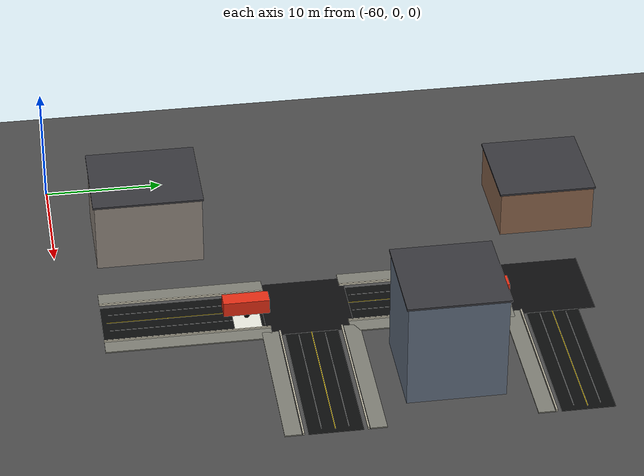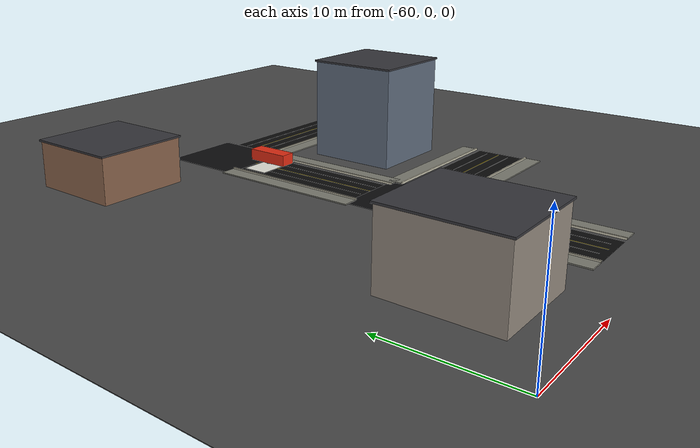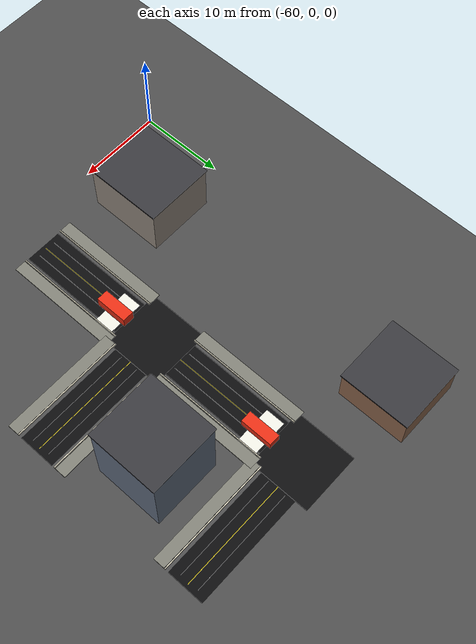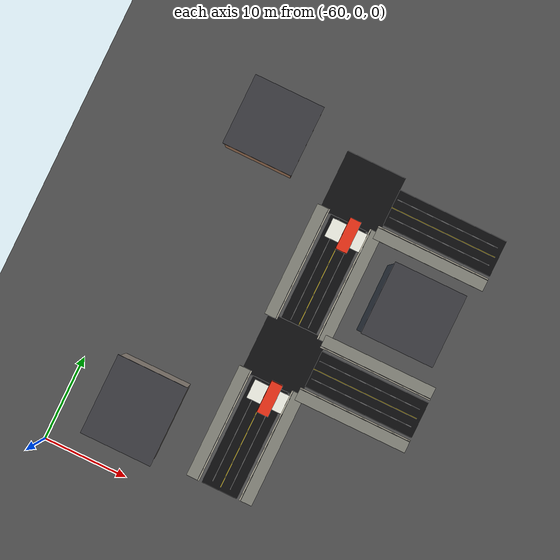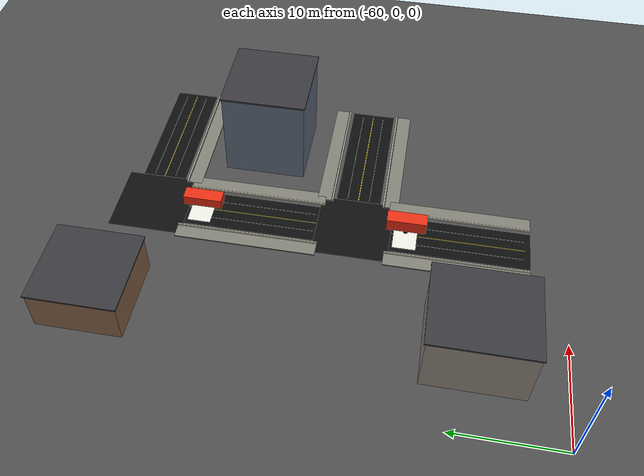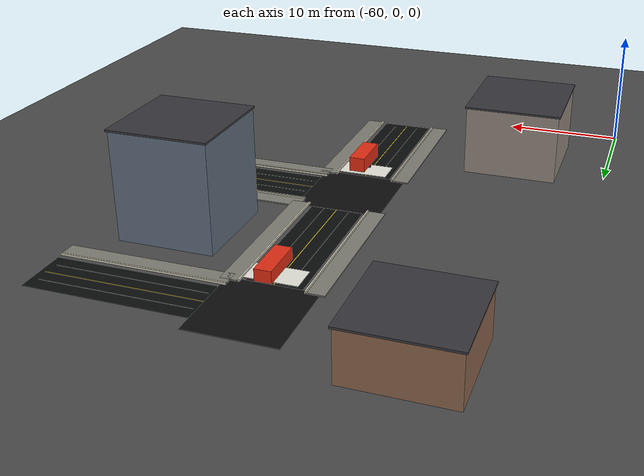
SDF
<sdf version="1.9">
 <world name="smart_city_world">
  <model name="ground">
   <static>true</static>
   <link name="link">
    <collision name="collision"><geometry><box><size>145 145 0.05</size></box></geometry></collision>
    <visual name="visual">
     <geometry><box><size>145 145 0.05</size></box></geometry>
     <material><ambient>0.30 0.30 0.30 1</ambient><diffuse>0.30 0.30 0.30 1</diffuse></material>
    </visual>
   </link>
  </model>
  <model name="road_e1">
   <static>true</static>
   <pose>-30.000 40.000 0.018 0 0 0.000000</pose>
   <link name="link">
    <collision name="collision"><geometry><box><size>13.600 4.350 0.030</size></box></geometry></collision>
    <visual name="visual">
     <geometry><box><size>13.600 4.350 0.030</size></box></geometry>
     <material><ambient>0.045 0.047 0.05 1</ambient><diffuse>0.045 0.047 0.05 1</diffuse></material>
    </visual>
   </link>
  </model>
  <model name="center_line_e1">
   <static>true</static>
   <pose>-30.000 40.000 0.052 0 0 0.000000</pose>
   <link name="link">
    <visual name="visual">
     <geometry><box><size>12.800 0.070 0.010</size></box></geometry>
     <material><ambient>1 0.86 0.05 1</ambient><diffuse>1 0.86 0.05 1</diffuse></material>
    </visual>
   </link>
  </model>
  <model name="edge_line_e1_L">
   <static>true</static>
   <pose>-30.000 41.080 0.054 0 0 0.000000</pose>
   <link name="link">
    <visual name="visual">
     <geometry><box><size>12.400 0.035 0.010</size></box></geometry>
     <material><ambient>0.85 0.85 0.85 1</ambient><diffuse>0.85 0.85 0.85 1</diffuse></material>
    </visual>
   </link>
  </model>
  <model name="sidewalk_e1_R">
   <static>true</static>
   <pose>-30.000 36.650 0.075 0 0 0.000000</pose>
   <link name="link">
    <visual name="visual">
     <geometry><box><size>13.600 1.350 0.100</size></box></geometry>
     <material><ambient>0.5 0.5 0.46 1</ambient><diffuse>0.5 0.5 0.46 1</diffuse></material>
    </visual>
   </link>
  </model>
  <model name="curb_e1_R">
   <static>true</static>
   <pose>-30.000 37.450 0.130 0 0 0.000000</pose>
   <link name="link">
    <visual name="visual">
     <geometry><box><size>13.600 0.120 0.180</size></box></geometry>
     <material><ambient>0.8 0.78 0.7 1</ambient><diffuse>0.8 0.78 0.7 1</diffuse></material>
    </visual>
   </link>
  </model>
  <model name="edge_line_e1_R">
   <static>true</static>
   <pose>-30.000 38.920 0.054 0 0 0.000000</pose>
   <link name="link">
    <visual name="visual">
     <geometry><box><size>12.400 0.035 0.010</size></box></geometry>
     <material><ambient>0.85 0.85 0.85 1</ambient><diffuse>0.85 0.85 0.85 1</diffuse></material>
    </visual>
   </link>
  </model>
  <model name="road_e5">
   <static>true</static>
   <pose>-30.000 20.000 0.018 0 0 0.000000</pose>
   <link name="link">
    <collision name="collision"><geometry><box><size>13.600 4.350 0.030</size></box></geometry></collision>
    <visual name="visual">
     <geometry><box><size>13.600 4.350 0.030</size></box></geometry>
     <material><ambient>0.045 0.047 0.05 1</ambient><diffuse>0.045 0.047 0.05 1</diffuse></material>
    </visual>
   </link>
  </model>
  <model name="center_line_e5">
   <static>true</static>
   <pose>-30.000 20.000 0.052 0 0 0.000000</pose>
   <link name="link">
    <visual name="visual">
     <geometry><box><size>12.800 0.070 0.010</size></box></geometry>
     <material><ambient>1 0.86 0.05 1</ambient><diffuse>1 0.86 0.05 1</diffuse></material>
    </visual>
   </link>
  </model>
  <model name="sidewalk_e5_L">
   <static>true</static>
   <pose>-30.000 23.350 0.075 0 0 0.000000</pose>
   <link name="link">
    <visual name="visual">
     <geometry><box><size>13.600 1.350 0.100</size></box></geometry>
     <material><ambient>0.5 0.5 0.46 1</ambient><diffuse>0.5 0.5 0.46 1</diffuse></material>
    </visual>
   </link>
  </model>
  <model name="curb_e5_L">
   <static>true</static>
   <pose>-30.000 22.550 0.130 0 0 0.000000</pose>
   <link name="link">
    <visual name="visual">
     <geometry><box><size>13.600 0.120 0.180</size></box></geometry>
     <material><ambient>0.8 0.78 0.7 1</ambient><diffuse>0.8 0.78 0.7 1</diffuse></material>
    </visual>
   </link>
  </model>
  <model name="edge_line_e5_L">
   <static>true</static>
   <pose>-30.000 21.080 0.054 0 0 0.000000</pose>
   <link name="link">
    <visual name="visual">
     <geometry><box><size>12.400 0.035 0.010</size></box></geometry>
     <material><ambient>0.85 0.85 0.85 1</ambient><diffuse>0.85 0.85 0.85 1</diffuse></material>
    </visual>
   </link>
  </model>
  <model name="sidewalk_e5_R">
   <static>true</static>
   <pose>-30.000 16.650 0.075 0 0 0.000000</pose>
   <link name="link">
    <visual name="visual">
     <geometry><box><size>13.600 1.350 0.100</size></box></geometry>
     <material><ambient>0.5 0.5 0.46 1</ambient><diffuse>0.5 0.5 0.46 1</diffuse></material>
    </visual>
   </link>
  </model>
  <model name="curb_e5_R">
   <static>true</static>
   <pose>-30.000 17.450 0.130 0 0 0.000000</pose>
   <link name="link">
    <visual name="visual">
     <geometry><box><size>13.600 0.120 0.180</size></box></geometry>
     <material><ambient>0.8 0.78 0.7 1</ambient><diffuse>0.8 0.78 0.7 1</diffuse></material>
    </visual>
   </link>
  </model>
  <model name="edge_line_e5_R">
   <static>true</static>
   <pose>-30.000 18.920 0.054 0 0 0.000000</pose>
   <link name="link">
    <visual name="visual">
     <geometry><box><size>12.400 0.035 0.010</size></box></geometry>
     <material><ambient>0.85 0.85 0.85 1</ambient><diffuse>0.85 0.85 0.85 1</diffuse></material>
    </visual>
   </link>
  </model>
  <model name="road_e21">
   <static>true</static>
   <pose>-40.000 30.000 0.018 0 0 -1.570796</pose>
   <link name="link">
    <collision name="collision"><geometry><box><size>13.600 4.350 0.030</size></box></geometry></collision>
    <visual name="visual">
     <geometry><box><size>13.600 4.350 0.030</size></box></geometry>
     <material><ambient>0.045 0.047 0.05 1</ambient><diffuse>0.045 0.047 0.05 1</diffuse></material>
    </visual>
   </link>
  </model>
  <model name="center_line_e21">
   <static>true</static>
   <pose>-40.000 30.000 0.052 0 0 -1.570796</pose>
   <link name="link">
    <visual name="visual">
     <geometry><box><size>12.800 0.070 0.010</size></box></geometry>
     <material><ambient>1 0.86 0.05 1</ambient><diffuse>1 0.86 0.05 1</diffuse></material>
    </visual>
   </link>
  </model>
  <model name="sidewalk_e21_L">
   <static>true</static>
   <pose>-36.650 30.000 0.075 0 0 -1.570796</pose>
   <link name="link">
    <visual name="visual">
     <geometry><box><size>13.600 1.350 0.100</size></box></geometry>
     <material><ambient>0.5 0.5 0.46 1</ambient><diffuse>0.5 0.5 0.46 1</diffuse></material>
    </visual>
   </link>
  </model>
  <model name="curb_e21_L">
   <static>true</static>
   <pose>-37.450 30.000 0.130 0 0 -1.570796</pose>
   <link name="link">
    <visual name="visual">
     <geometry><box><size>13.600 0.120 0.180</size></box></geometry>
     <material><ambient>0.8 0.78 0.7 1</ambient><diffuse>0.8 0.78 0.7 1</diffuse></material>
    </visual>
   </link>
  </model>
  <model name="edge_line_e21_L">
   <static>true</static>
   <pose>-38.920 30.000 0.054 0 0 -1.570796</pose>
   <link name="link">
    <visual name="visual">
     <geometry><box><size>12.400 0.035 0.010</size></box></geometry>
     <material><ambient>0.85 0.85 0.85 1</ambient><diffuse>0.85 0.85 0.85 1</diffuse></material>
    </visual>
   </link>
  </model>
  <model name="sidewalk_e21_R">
   <static>true</static>
   <pose>-43.350 30.000 0.075 0 0 -1.570796</pose>
   <link name="link">
    <visual name="visual">
     <geometry><box><size>13.600 1.350 0.100</size></box></geometry>
     <material><ambient>0.5 0.5 0.46 1</ambient><diffuse>0.5 0.5 0.46 1</diffuse></material>
    </visual>
   </link>
  </model>
  <model name="curb_e21_R">
   <static>true</static>
   <pose>-42.550 30.000 0.130 0 0 -1.570796</pose>
   <link name="link">
    <visual name="visual">
     <geometry><box><size>13.600 0.120 0.180</size></box></geometry>
     <material><ambient>0.8 0.78 0.7 1</ambient><diffuse>0.8 0.78 0.7 1</diffuse></material>
    </visual>
   </link>
  </model>
  <model name="edge_line_e21_R">
   <static>true</static>
   <pose>-41.080 30.000 0.054 0 0 -1.570796</pose>
   <link name="link">
    <visual name="visual">
     <geometry><box><size>12.400 0.035 0.010</size></box></geometry>
     <material><ambient>0.85 0.85 0.85 1</ambient><diffuse>0.85 0.85 0.85 1</diffuse></material>
    </visual>
   </link>
  </model>
  <model name="road_e22">
   <static>true</static>
   <pose>-40.000 10.000 0.018 0 0 -1.570796</pose>
   <link name="link">
    <collision name="collision"><geometry><box><size>13.600 4.350 0.030</size></box></geometry></collision>
    <visual name="visual">
     <geometry><box><size>13.600 4.350 0.030</size></box></geometry>
     <material><ambient>0.045 0.047 0.05 1</ambient><diffuse>0.045 0.047 0.05 1</diffuse></material>
    </visual>
   </link>
  </model>
  <model name="center_line_e22">
   <static>true</static>
   <pose>-40.000 10.000 0.052 0 0 -1.570796</pose>
   <link name="link">
    <visual name="visual">
     <geometry><box><size>12.800 0.070 0.010</size></box></geometry>
     <material><ambient>1 0.86 0.05 1</ambient><diffuse>1 0.86 0.05 1</diffuse></material>
    </visual>
   </link>
  </model>
  <model name="sidewalk_e22_L">
   <static>true</static>
   <pose>-36.650 10.000 0.075 0 0 -1.570796</pose>
   <link name="link">
    <visual name="visual">
     <geometry><box><size>13.600 1.350 0.100</size></box></geometry>
     <material><ambient>0.5 0.5 0.46 1</ambient><diffuse>0.5 0.5 0.46 1</diffuse></material>
    </visual>
   </link>
  </model>
  <model name="curb_e22_L">
   <static>true</static>
   <pose>-37.450 10.000 0.130 0 0 -1.570796</pose>
   <link name="link">
    <visual name="visual">
     <geometry><box><size>13.600 0.120 0.180</size></box></geometry>
     <material><ambient>0.8 0.78 0.7 1</ambient><diffuse>0.8 0.78 0.7 1</diffuse></material>
    </visual>
   </link>
  </model>
  <model name="edge_line_e22_L">
   <static>true</static>
   <pose>-38.920 10.000 0.054 0 0 -1.570796</pose>
   <link name="link">
    <visual name="visual">
     <geometry><box><size>12.400 0.035 0.010</size></box></geometry>
     <material><ambient>0.85 0.85 0.85 1</ambient><diffuse>0.85 0.85 0.85 1</diffuse></material>
    </visual>
   </link>
  </model>
  <model name="sidewalk_e22_R">
   <static>true</static>
   <pose>-43.350 10.000 0.075 0 0 -1.570796</pose>
   <link name="link">
    <visual name="visual">
     <geometry><box><size>13.600 1.350 0.100</size></box></geometry>
     <material><ambient>0.5 0.5 0.46 1</ambient><diffuse>0.5 0.5 0.46 1</diffuse></material>
    </visual>
   </link>
  </model>
  <model name="curb_e22_R">
   <static>true</static>
   <pose>-42.550 10.000 0.130 0 0 -1.570796</pose>
   <link name="link">
    <visual name="visual">
     <geometry><box><size>13.600 0.120 0.180</size></box></geometry>
     <material><ambient>0.8 0.78 0.7 1</ambient><diffuse>0.8 0.78 0.7 1</diffuse></material>
    </visual>
   </link>
  </model>
  <model name="edge_line_e22_R">
   <static>true</static>
   <pose>-41.080 10.000 0.054 0 0 -1.570796</pose>
   <link name="link">
    <visual name="visual">
     <geometry><box><size>12.400 0.035 0.010</size></box></geometry>
     <material><ambient>0.85 0.85 0.85 1</ambient><diffuse>0.85 0.85 0.85 1</diffuse></material>
    </visual>
   </link>
  </model>
  <model name="intersection_plate_n1">
   <static>true</static>
   <pose>-40.000 40.000 0.025 0 0 0.000000</pose>
   <link name="link">
    <collision name="collision"><geometry><box><size>7.200 7.200 0.035</size></box></geometry></collision>
    <visual name="visual">
     <geometry><box><size>7.200 7.200 0.035</size></box></geometry>
     <material><ambient>0.055 0.055 0.058 1</ambient><diffuse>0.055 0.055 0.058 1</diffuse></material>
    </visual>
   </link>
  </model>
  <model name="intersection_plate_n6">
   <static>true</static>
   <pose>-40.000 20.000 0.025 0 0 0.000000</pose>
   <link name="link">
    <collision name="collision"><geometry><box><size>7.200 7.200 0.035</size></box></geometry></collision>
    <visual name="visual">
     <geometry><box><size>7.200 7.200 0.035</size></box></geometry>
     <material><ambient>0.055 0.055 0.058 1</ambient><diffuse>0.055 0.055 0.058 1</diffuse></material>
    </visual>
   </link>
  </model>
  <model name="parking_bus_1">
   <static>true</static>
   <pose>-39.400 35.000 0.052 0 0 0.000000</pose>
   <link name="link">
    <collision name="collision"><geometry><box><size>4.700 2.250 0.050</size></box></geometry></collision>
    <visual name="visual">
     <geometry><box><size>4.700 2.250 0.050</size></box></geometry>
     <material><ambient>0.92 0.92 0.88 1</ambient><diffuse>0.92 0.92 0.88 1</diffuse></material>
    </visual>
   </link>
  </model>
  <model name="parking_bus_2">
   <static>true</static>
   <pose>-39.400 15.000 0.052 0 0 0.000000</pose>
   <link name="link">
    <collision name="collision"><geometry><box><size>4.700 2.250 0.050</size></box></geometry></collision>
    <visual name="visual">
     <geometry><box><size>4.700 2.250 0.050</size></box></geometry>
     <material><ambient>0.92 0.92 0.88 1</ambient><diffuse>0.92 0.92 0.88 1</diffuse></material>
    </visual>
   </link>
  </model>
  <model name="city_hall">
   <static>true</static>
   <pose>-52.000 8.000 3.000 0 0 0.000000</pose>
   <link name="link">
    <collision name="collision"><geometry><box><size>8.000 9.000 6.000</size></box></geometry></collision>
    <visual name="visual">
     <geometry><box><size>8.000 9.000 6.000</size></box></geometry>
     <material><ambient>0.58 0.54 0.5 1</ambient><diffuse>0.58 0.54 0.5 1</diffuse></material>
    </visual>
   </link>
  </model>
  <model name="city_hall_roof">
   <static>true</static>
   <pose>-52.000 8.000 6.080 0 0 0.000000</pose>
   <link name="link">
    <visual name="visual">
     <geometry><box><size>8.250 9.250 0.160</size></box></geometry>
     <material><ambient>0.22 0.22 0.24 1</ambient><diffuse>0.22 0.22 0.24 1</diffuse></material>
    </visual>
   </link>
  </model>
  <model name="office_a">
   <static>true</static>
   <pose>-30.000 30.000 4.500 0 0 0.000000</pose>
   <link name="link">
    <collision name="collision"><geometry><box><size>8.000 8.000 9.000</size></box></geometry></collision>
    <visual name="visual">
     <geometry><box><size>8.000 8.000 9.000</size></box></geometry>
     <material><ambient>0.38 0.43 0.5 1</ambient><diffuse>0.38 0.43 0.5 1</diffuse></material>
    </visual>
   </link>
  </model>
  <model name="office_a_roof">
   <static>true</static>
   <pose>-30.000 30.000 9.080 0 0 0.000000</pose>
   <link name="link">
    <visual name="visual">
     <geometry><box><size>8.250 8.250 0.160</size></box></geometry>
     <material><ambient>0.22 0.22 0.24 1</ambient><diffuse>0.22 0.22 0.24 1</diffuse></material>
    </visual>
   </link>
  </model>
  <model name="library">
   <static>true</static>
   <pose>-52.000 42.000 2.000 0 0 0.000000</pose>
   <link name="link">
    <collision name="collision"><geometry><box><size>8.000 8.000 4.000</size></box></geometry></collision>
    <visual name="visual">
     <geometry><box><size>8.000 8.000 4.000</size></box></geometry>
     <material><ambient>0.55 0.4 0.3 1</ambient><diffuse>0.55 0.4 0.3 1</diffuse></material>
    </visual>
   </link>
  </model>
  <model name="library_roof">
   <static>true</static>
   <pose>-52.000 42.000 4.080 0 0 0.000000</pose>
   <link name="link">
    <visual name="visual">
     <geometry><box><size>8.250 8.250 0.160</size></box></geometry>
     <material><ambient>0.22 0.22 0.24 1</ambient><diffuse>0.22 0.22 0.24 1</diffuse></material>
    </visual>
   </link>
  </model>
  <model name="bus_1">
   <pose>-39.400 35.000 0.28 0 0 -1.5700</pose>
   <link name="base_link">
    <inertial>
     <pose>0 0 0.22 0 0 0</pose>
     <mass>3500</mass>
     <inertia><ixx>825</ixx><iyy>4500</iyy><izz>4750</izz><ixy>0</ixy><ixz>0</ixz><iyz>0</iyz></inertia>
    </inertial>
    <collision name="body_collision">
     <pose>0 0 0.60 0 0 0</pose>
     <geometry><box><size>3.8 1.35 1.0</size></box></geometry>
     <surface>
      <friction><ode><mu>4.0</mu><mu2>4.0</mu2><slip1>0.0</slip1><slip2>0.0</slip2></ode></friction>
      <contact>
       <ode><kp>1500000</kp><kd>30000</kd><max_vel>0.05</max_vel><min_depth>0.001</min_depth></ode>
      </contact>
      <bounce><restitution_coefficient>0.0</restitution_coefficient><threshold>100000.0</threshold></bounce>
     </surface>
    </collision>
    <visual name="body_visual">
     <pose>0 0 0.60 0 0 0</pose>
     <geometry><box><size>3.8 1.35 1.0</size></box></geometry>
     <material><ambient>0.90 0.18 0.08 1</ambient><diffuse>0.90 0.18 0.08 1</diffuse></material>
    </visual>
    <sensor name="lidar" type="gpu_lidar">
     <pose>2.020 0 1.750 0 0 0</pose>
     <topic>/bus_1/scan</topic>
     <update_rate>10</update_rate>
     <lidar>
      <scan>
       <horizontal>
        <samples>360</samples>
        <resolution>1</resolution>
        <min_angle>-3.14159</min_angle>
        <max_angle>3.14159</max_angle>
       </horizontal>
      </scan>
      <range><min>0.12</min><max>18.0</max><resolution>0.03</resolution></range>
     </lidar>
     <always_on>1</always_on>
     <visualize>false</visualize>
    </sensor>
   </link>
   <link name="left_wheel">
    <pose>0 0.525 0.220 1.5708 0 0</pose>
    <collision name="collision">
     <geometry><cylinder><radius>0.22</radius><length>0.16</length></cylinder></geometry>
     <surface>
      <friction><ode><mu>4.0</mu><mu2>4.0</mu2><slip1>0.0</slip1><slip2>0.0</slip2></ode></friction>
      <contact>
       <ode><kp>1500000</kp><kd>30000</kd><max_vel>0.05</max_vel><min_depth>0.001</min_depth></ode>
      </contact>
      <bounce><restitution_coefficient>0.0</restitution_coefficient><threshold>100000.0</threshold></bounce>
     </surface>
    </collision>
    <visual name="visual">
     <geometry><cylinder><radius>0.22</radius><length>0.16</length></cylinder></geometry>
     <material><ambient>0.01 0.01 0.01 1</ambient><diffuse>0.01 0.01 0.01 1</diffuse></material>
    </visual>
   </link>
   <link name="right_wheel">
    <pose>0 -0.525 0.220 1.5708 0 0</pose>
    <collision name="collision">
     <geometry><cylinder><radius>0.22</radius><length>0.16</length></cylinder></geometry>
     <surface>
      <friction><ode><mu>4.0</mu><mu2>4.0</mu2><slip1>0.0</slip1><slip2>0.0</slip2></ode></friction>
      <contact>
       <ode><kp>1500000</kp><kd>30000</kd><max_vel>0.05</max_vel><min_depth>0.001</min_depth></ode>
      </contact>
      <bounce><restitution_coefficient>0.0</restitution_coefficient><threshold>100000.0</threshold></bounce>
     </surface>
    </collision>
    <visual name="visual">
     <geometry><cylinder><radius>0.22</radius><length>0.16</length></cylinder></geometry>
     <material><ambient>0.01 0.01 0.01 1</ambient><diffuse>0.01 0.01 0.01 1</diffuse></material>
    </visual>
   </link>
   <joint name="left_wheel_joint" type="revolute">
    <parent>base_link</parent>
    <child>left_wheel</child>
    <axis>
     <xyz>0 0 1</xyz>
     <limit><lower>-1e16</lower><upper>1e16</upper></limit>
     <dynamics><damping>3</damping><friction>1</friction></dynamics>
    </axis>
   </joint>
   <joint name="right_wheel_joint" type="revolute">
    <parent>base_link</parent>
    <child>right_wheel</child>
    <axis>
     <xyz>0 0 1</xyz>
     <limit><lower>-1e16</lower><upper>1e16</upper></limit>
     <dynamics><damping>3</damping><friction>1</friction></dynamics>
    </axis>
   </joint>
   <plugin filename="gz-sim-diff-drive-system" name="gz::sim::systems::DiffDrive">
    <left_joint>left_wheel_joint</left_joint>
    <right_joint>right_wheel_joint</right_joint>
    <wheel_separation>1.05</wheel_separation>
    <wheel_radius>0.22</wheel_radius>
    <topic>/bus_1/cmd_vel</topic>
    <odom_topic>/bus_1/odom</odom_topic>
    <frame_id>bus_1/odom</frame_id>
    <child_frame_id>bus_1/base_link</child_frame_id>
    <odom_publish_frequency>30</odom_publish_frequency>
   </plugin>
   <plugin filename="libmodel_world_pose_publisher.so" name="smart_city::ModelWorldPosePublisher"/>
  </model>
  <model name="bus_2">
   <pose>-39.400 15.000 0.28 0 0 -1.5700</pose>
   <link name="base_link">
    <inertial>
     <pose>0 0 0.22 0 0 0</pose>
     <mass>3500</mass>
     <inertia><ixx>825</ixx><iyy>4500</iyy><izz>4750</izz><ixy>0</ixy><ixz>0</ixz><iyz>0</iyz></inertia>
    </inertial>
    <collision name="body_collision">
     <pose>0 0 0.60 0 0 0</pose>
     <geometry><box><size>3.8 1.35 1.0</size></box></geometry>
     <surface>
      <friction><ode><mu>4.0</mu><mu2>4.0</mu2><slip1>0.0</slip1><slip2>0.0</slip2></ode></friction>
      <contact>
       <ode><kp>1500000</kp><kd>30000</kd><max_vel>0.05</max_vel><min_depth>0.001</min_depth></ode>
      </contact>
      <bounce><restitution_coefficient>0.0</restitution_coefficient><threshold>100000.0</threshold></bounce>
     </surface>
    </collision>
    <visual name="body_visual">
     <pose>0 0 0.975 0 0 0</pose>
     <geometry><box><size>3.8 1.35 1.25</size></box></geometry>
     <material><ambient>0.90 0.18 0.08 1</ambient><diffuse>0.90 0.18 0.08 1</diffuse></material>
    </visual>
    <sensor name="lidar" type="gpu_lidar">
     <pose>2.020 0 1.750 0 0 0</pose>
     <topic>/bus_2/scan</topic>
     <update_rate>10</update_rate>
     <lidar>
      <scan>
       <horizontal>
        <samples>360</samples>
        <resolution>1</resolution>
        <min_angle>-3.14159</min_angle>
        <max_angle>3.14159</max_angle>
       </horizontal>
      </scan>
      <range><min>0.12</min><max>18.0</max><resolution>0.03</resolution></range>
     </lidar>
     <always_on>1</always_on>
     <visualize>false</visualize>
    </sensor>
   </link>
   <link name="left_wheel">
    <pose>0 0.525 0.220 1.5708 0 0</pose>
    <collision name="collision">
     <geometry><cylinder><radius>0.22</radius><length>0.16</length></cylinder></geometry>
     <surface>
      <friction><ode><mu>4.0</mu><mu2>4.0</mu2><slip1>0.0</slip1><slip2>0.0</slip2></ode></friction>
      <contact>
       <ode><kp>1500000</kp><kd>30000</kd><max_vel>0.05</max_vel><min_depth>0.001</min_depth></ode>
      </contact>
      <bounce><restitution_coefficient>0.0</restitution_coefficient><threshold>100000.0</threshold></bounce>
     </surface>
    </collision>
    <visual name="visual">
     <geometry><cylinder><radius>0.22</radius><length>0.16</length></cylinder></geometry>
     <material><ambient>0.01 0.01 0.01 1</ambient><diffuse>0.01 0.01 0.01 1</diffuse></material>
    </visual>
   </link>
   <link name="right_wheel">
    <pose>0 -0.525 0.220 1.5708 0 0</pose>
    <collision name="collision">
     <geometry><cylinder><radius>0.22</radius><length>0.16</length></cylinder></geometry>
     <surface>
      <friction><ode><mu>4.0</mu><mu2>4.0</mu2><slip1>0.0</slip1><slip2>0.0</slip2></ode></friction>
      <contact>
       <ode><kp>1500000</kp><kd>30000</kd><max_vel>0.05</max_vel><min_depth>0.001</min_depth></ode>
      </contact>
      <bounce><restitution_coefficient>0.0</restitution_coefficient><threshold>100000.0</threshold></bounce>
     </surface>
    </collision>
    <visual name="visual">
     <geometry><cylinder><radius>0.22</radius><length>0.16</length></cylinder></geometry>
     <material><ambient>0.01 0.01 0.01 1</ambient><diffuse>0.01 0.01 0.01 1</diffuse></material>
    </visual>
   </link>
   <joint name="left_wheel_joint" type="revolute">
    <parent>base_link</parent>
    <child>left_wheel</child>
    <axis>
     <xyz>0 0 1</xyz>
     <limit><lower>-1e16</lower><upper>1e16</upper></limit>
     <dynamics><damping>3</damping><friction>1</friction></dynamics>
    </axis>
   </joint>
   <joint name="right_wheel_joint" type="revolute">
    <parent>base_link</parent>
    <child>right_wheel</child>
    <axis>
     <xyz>0 0 1</xyz>
     <limit><lower>-1e16</lower><upper>1e16</upper></limit>
     <dynamics><damping>3</damping><friction>1</friction></dynamics>
    </axis>
   </joint>
   <plugin filename="gz-sim-diff-drive-system" name="gz::sim::systems::DiffDrive">
    <left_joint>left_wheel_joint</left_joint>
    <right_joint>right_wheel_joint</right_joint>
    <wheel_separation>1.05</wheel_separation>
    <wheel_radius>0.22</wheel_radius>
    <topic>/bus_2/cmd_vel</topic>
    <odom_topic>/bus_2/odom</odom_topic>
    <frame_id>bus_2/odom</frame_id>
    <child_frame_id>bus_2/base_link</child_frame_id>
    <odom_publish_frequency>30</odom_publish_frequency>
   </plugin>
   <plugin filename="libmodel_world_pose_publisher.so" name="smart_city::ModelWorldPosePublisher"/>
  </model>
 </world>
</sdf>
